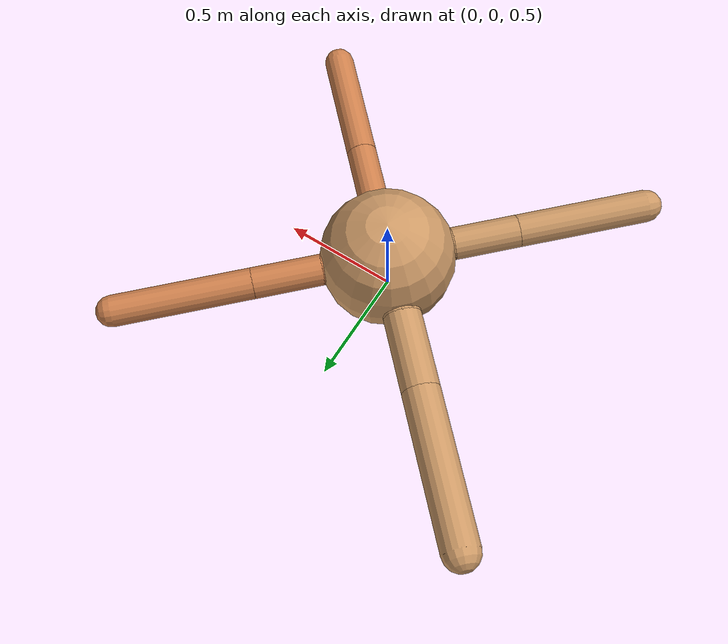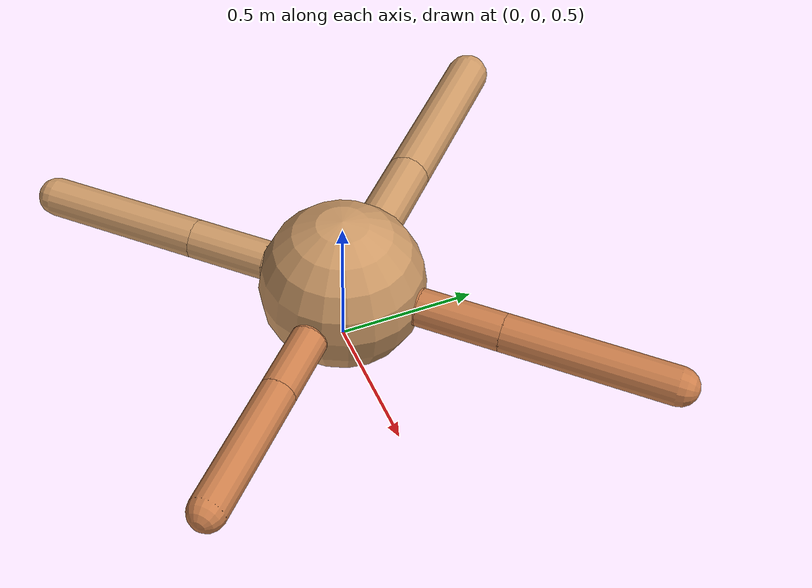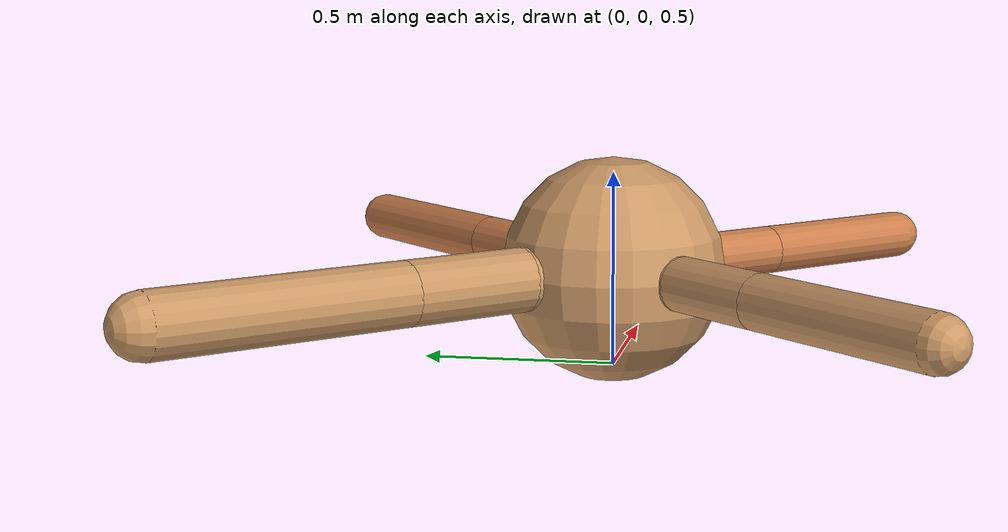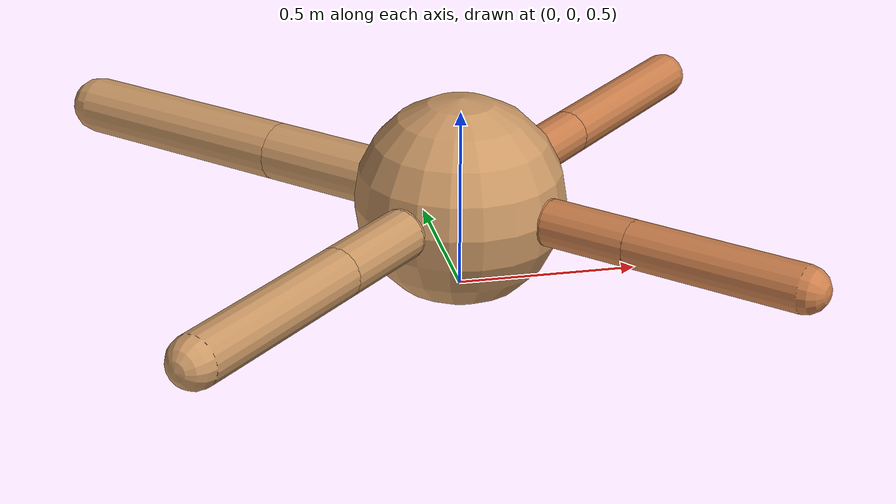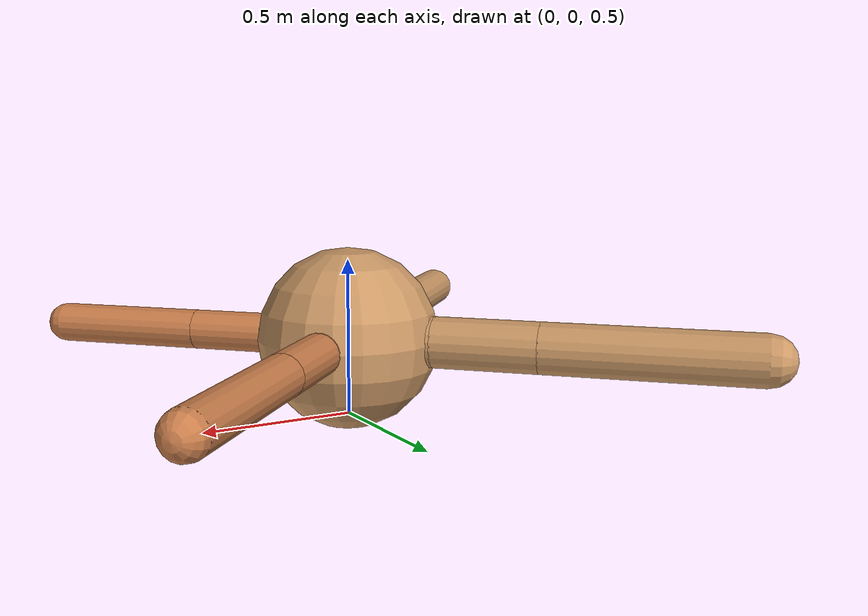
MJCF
<?xml version="1.0" ?>
<mujoco model="ant">

	<compiler angle="degree" coordinate="local" inertiafromgeom="true"/>

	<option integrator="RK4" timestep="0.01"/>

	<custom>

		<numeric data="0.0 0.0 0.55 1.0 0.0 0.0 0.0 0.0 1.0 0.0 -1.0 0.0 -1.0 0.0 1.0" name="init_qpos"/>

	</custom>

	<default>

		<joint armature="1" damping="1" limited="true"/>

		<geom conaffinity="0" condim="3" density="5.0" friction="1.5 0.1 0.1" margin="0.01" rgba="0.8 0.6 0.4 1"/>

	</default>

	<worldbody>

		<body name="torso" pos="0 0 0.75">

			<geom name="torso_geom" pos="0 0 0" size="0.29012720126930996" type="sphere"/>

			<!--joint armature="0" damping="0" limited="false" margin="0.01" name="root" pos="0 0 0" type="free"/-->

			<body name="front_left_leg" pos="0 0 0">

				<geom fromto="0 0 0 0.2 0.2 0" name="aux_1_geom" size="0.06664829156067793" type="capsule" rgba=".8 .5 .3 1"/>

				<body name="aux_1" pos="0.2 0.2 0">

					<joint axis="0 0 1" name="hip_1" pos="0.0 0.0 0.0" range="-40 40" type="hinge"/>

					<geom fromto="0 0 0 0.20891676020828198 0.20891676020828198 0" name="left_leg_geom" size="0.06664829156067793" type="capsule" rgba=".8 .5 .3 1"/>

					<body pos="0.20891676020828198 0.20891676020828198 0" name="front_left_foot">

						<joint axis="-1 1 0" name="ankle_1" pos="0.0 0.0 0.0" range="30 100" type="hinge"/>

						<geom fromto="0 0 0 0.41783352041656396 0.41783352041656396 0" name="left_ankle_geom" size="0.06664829156067793" type="capsule" rgba=".8 .5 .3 1"/>

					</body>

				</body>

			</body>

			<body name="front_right_leg" pos="0 0 0">

				<geom fromto="0 0 0 -0.2 0.2 0" name="aux_2_geom" size="0.08152169557482011" type="capsule"/>

				<body name="aux_2" pos="-0.2 0.2 0">

					<joint axis="0 0 1" name="hip_2" pos="0.0 0.0 0.0" range="-40 40" type="hinge"/>

					<geom fromto="0 0 0 -0.23641976387204125 0.23641976387204125 0" name="right_leg_geom" size="0.08152169557482011" type="capsule"/>

					<body pos="-0.23641976387204125 0.23641976387204125 0" name="front_right_foot">

						<joint axis="1 1 0" name="ankle_2" pos="0.0 0.0 0.0" range="-100 -30" type="hinge"/>

						<geom fromto="0 0 0 -0.4728395277440825 0.4728395277440825 0" name="right_ankle_geom" size="0.08152169557482011" type="capsule"/>

					</body>

				</body>

			</body>

			<body name="left_back_leg" pos="0 0 0">

				<geom fromto="0 0 0 -0.2 -0.2 0" name="aux_3_geom" size="0.06970478714324271" type="capsule"/>

				<body name="aux_3" pos="-0.2 -0.2 0">

					<joint axis="0 0 1" name="hip_3" pos="0.0 0.0 0.0" range="-40 40" type="hinge"/>

					<geom fromto="0 0 0 -0.20126886093667196 -0.20126886093667196 0" name="back_leg_geom" size="0.06970478714324271" type="capsule"/>

					<body pos="-0.20126886093667196 -0.20126886093667196 0" name="left_back_foot">

						<joint axis="-1 1 0" name="ankle_3" pos="0.0 0.0 0.0" range="-100 -30" type="hinge"/>

						<geom fromto="0 0 0 -0.4025377218733439 -0.4025377218733439 0" name="third_ankle_geom" size="0.06970478714324271" type="capsule"/>

					</body>

				</body>

			</body>

			<body name="right_back_leg" pos="0 0 0">

				<geom fromto="0 0 0 0.2 -0.2 0" name="aux_4_geom" size="0.06428172556907243" type="capsule" rgba=".8 .5 .3 1"/>

				<body name="aux_4" pos="0.2 -0.2 0">

					<joint axis="0 0 1" name="hip_4" pos="0.0 0.0 0.0" range="-40 40" type="hinge"/>

					<geom fromto="0 0 0 0.17234028934836562 -0.17234028934836562 0" name="rightback_leg_geom" size="0.06428172556907243" type="capsule" rgba=".8 .5 .3 1"/>

					<body pos="0.17234028934836562 -0.17234028934836562 0" name="right_back_foot">

						<joint axis="1 1 0" name="ankle_4" pos="0.0 0.0 0.0" range="30 100" type="hinge"/>

						<geom fromto="0 0 0 0.34468057869673124 -0.34468057869673124 0" name="fourth_ankle_geom" size="0.06428172556907243" type="capsule" rgba=".8 .5 .3 1"/>

					</body>

				</body>

			</body>

		</body>

	</worldbody>

	<actuator>

		<motor ctrllimited="true" ctrlrange="-1.0 1.0" joint="hip_4" gear="150"/>

		<motor ctrllimited="true" ctrlrange="-1.0 1.0" joint="ankle_4" gear="150"/>

		<motor ctrllimited="true" ctrlrange="-1.0 1.0" joint="hip_1" gear="150"/>

		<motor ctrllimited="true" ctrlrange="-1.0 1.0" joint="ankle_1" gear="150"/>

		<motor ctrllimited="true" ctrlrange="-1.0 1.0" joint="hip_2" gear="150"/>

		<motor ctrllimited="true" ctrlrange="-1.0 1.0" joint="ankle_2" gear="150"/>

		<motor ctrllimited="true" ctrlrange="-1.0 1.0" joint="hip_3" gear="150"/>

		<motor ctrllimited="true" ctrlrange="-1.0 1.0" joint="ankle_3" gear="150"/>

	</actuator>

</mujoco>
